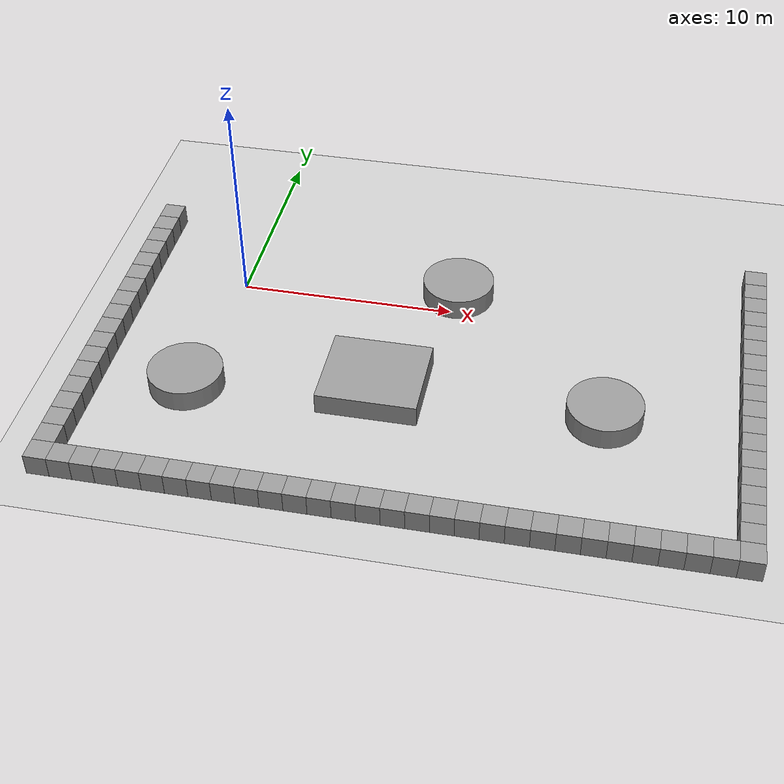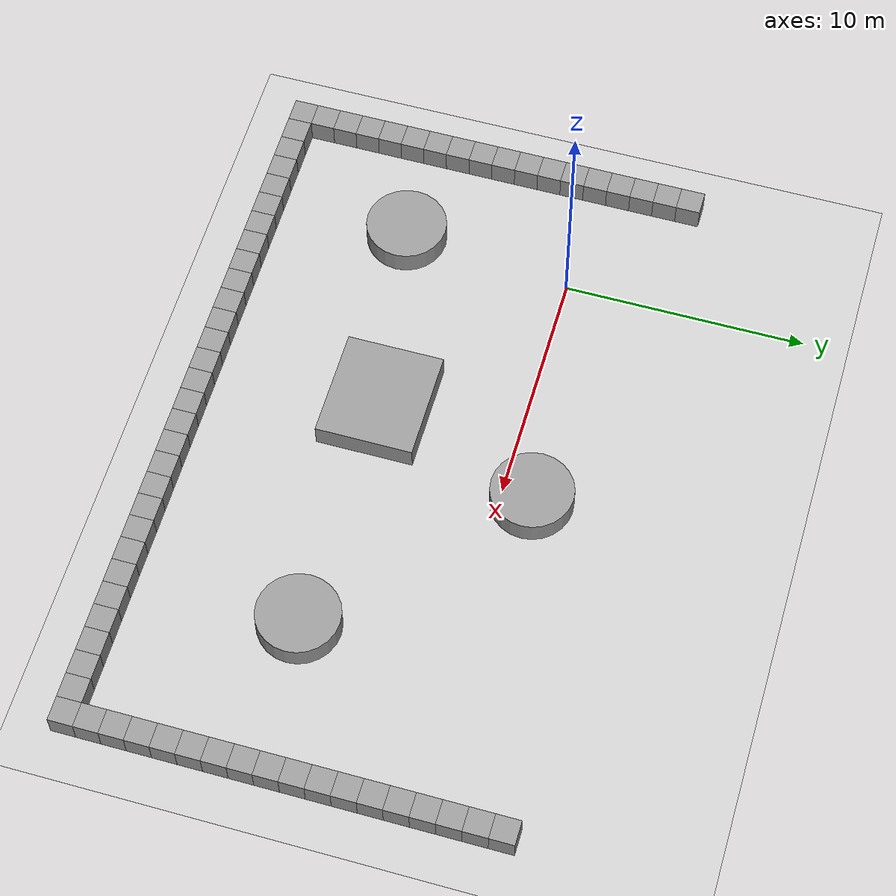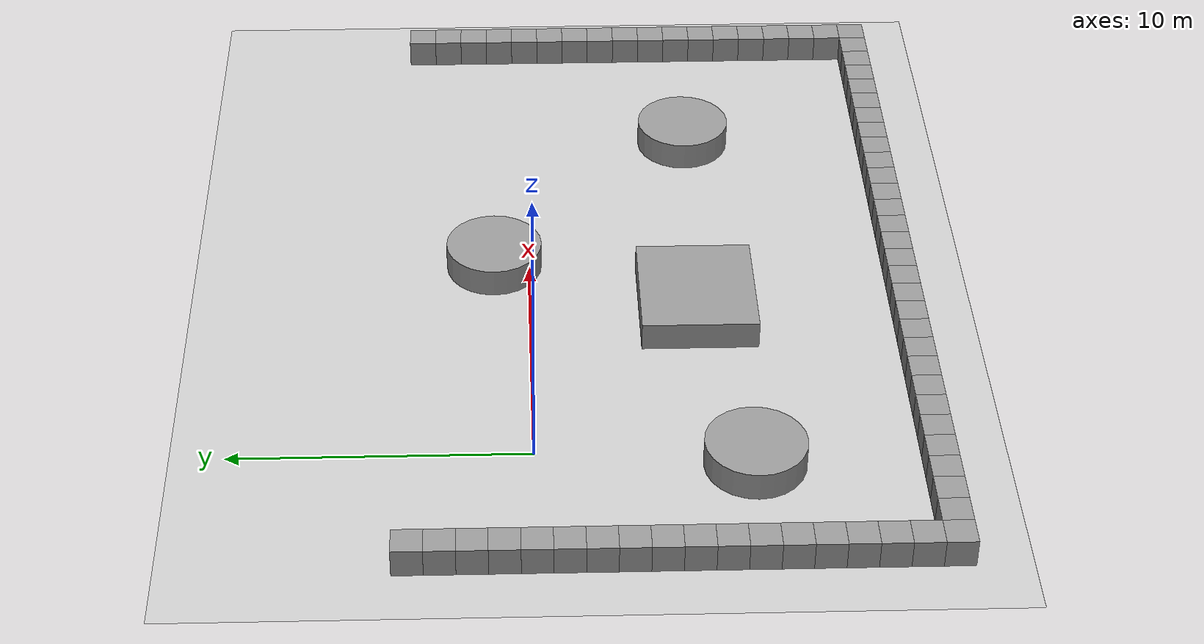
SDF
<sdf version="1.6">
 <world name="default">
  <model name="ground_plane">
   <static>1</static>
   <link name="link">
    <collision name="collision">
     <geometry><plane><normal>0 0 1</normal><size>100 100</size></plane></geometry>
     <surface><friction><ode><mu>100</mu><mu2>50</mu2></ode></friction></surface>
    </collision>
    <visual name="visual">
     <cast_shadows>0</cast_shadows>
     <geometry><plane><normal>0 0 1</normal><size>100 100</size></plane></geometry>
     <material>
      <script><uri>file://media/materials/scripts/gazebo.material</uri><name>Gazebo/Grey</name></script>
     </material>
    </visual>
    <velocity_decay><linear>0</linear><angular>0</angular></velocity_decay>
   </link>
  </model>
  <model name="unit_box_40">
   <pose>-5 4 0.5 0 0 0</pose>
   <static>1</static>
   <link name="link">
    <inertial>
     <mass>1</mass>
     <inertia><ixx>1</ixx><ixy>0</ixy><ixz>0</ixz><iyy>1</iyy><iyz>0</iyz><izz>1</izz></inertia>
    </inertial>
    <collision name="collision"><geometry><box><size>1 1 1</size></box></geometry></collision>
    <visual name="visual">
     <geometry><box><size>1 1 1</size></box></geometry>
     <material>
      <script><uri>file://media/materials/scripts/gazebo.material</uri><name>Gazebo/Grey</name></script>
     </material>
    </visual>
    <velocity_decay><linear>0</linear><angular>0</angular></velocity_decay>
   </link>
   <static>1</static>
  </model>
  <model name="unit_box_41">
   <pose>-5 3 0.5 0 0 0</pose>
   <static>1</static>
   <link name="link">
    <inertial>
     <mass>1</mass>
     <inertia><ixx>1</ixx><ixy>0</ixy><ixz>0</ixz><iyy>1</iyy><iyz>0</iyz><izz>1</izz></inertia>
    </inertial>
    <collision name="collision"><geometry><box><size>1 1 1</size></box></geometry></collision>
    <visual name="visual">
     <geometry><box><size>1 1 1</size></box></geometry>
     <material>
      <script><uri>file://media/materials/scripts/gazebo.material</uri><name>Gazebo/Grey</name></script>
     </material>
    </visual>
    <velocity_decay><linear>0</linear><angular>0</angular></velocity_decay>
   </link>
   <static>1</static>
  </model>
  <model name="unit_box_42">
   <pose>-5 2 0.5 0 0 0</pose>
   <static>1</static>
   <link name="link">
    <inertial>
     <mass>1</mass>
     <inertia><ixx>1</ixx><ixy>0</ixy><ixz>0</ixz><iyy>1</iyy><iyz>0</iyz><izz>1</izz></inertia>
    </inertial>
    <collision name="collision"><geometry><box><size>1 1 1</size></box></geometry></collision>
    <visual name="visual">
     <geometry><box><size>1 1 1</size></box></geometry>
     <material>
      <script><uri>file://media/materials/scripts/gazebo.material</uri><name>Gazebo/Grey</name></script>
     </material>
    </visual>
    <velocity_decay><linear>0</linear><angular>0</angular></velocity_decay>
   </link>
   <static>1</static>
  </model>
  <model name="unit_box_43">
   <pose>-5 1 0.5 0 0 0</pose>
   <static>1</static>
   <link name="link">
    <inertial>
     <mass>1</mass>
     <inertia><ixx>1</ixx><ixy>0</ixy><ixz>0</ixz><iyy>1</iyy><iyz>0</iyz><izz>1</izz></inertia>
    </inertial>
    <collision name="collision"><geometry><box><size>1 1 1</size></box></geometry></collision>
    <visual name="visual">
     <geometry><box><size>1 1 1</size></box></geometry>
     <material>
      <script><uri>file://media/materials/scripts/gazebo.material</uri><name>Gazebo/Grey</name></script>
     </material>
    </visual>
    <velocity_decay><linear>0</linear><angular>0</angular></velocity_decay>
   </link>
   <static>1</static>
  </model>
  <model name="unit_box_44">
   <pose>-5 0 0.5 0 0 0</pose>
   <static>1</static>
   <link name="link">
    <inertial>
     <mass>1</mass>
     <inertia><ixx>1</ixx><ixy>0</ixy><ixz>0</ixz><iyy>1</iyy><iyz>0</iyz><izz>1</izz></inertia>
    </inertial>
    <collision name="collision"><geometry><box><size>1 1 1</size></box></geometry></collision>
    <visual name="visual">
     <geometry><box><size>1 1 1</size></box></geometry>
     <material>
      <script><uri>file://media/materials/scripts/gazebo.material</uri><name>Gazebo/Grey</name></script>
     </material>
    </visual>
    <velocity_decay><linear>0</linear><angular>0</angular></velocity_decay>
   </link>
   <static>1</static>
  </model>
  <model name="unit_box_45">
   <pose>-5 -1 0.5 0 0 0</pose>
   <static>1</static>
   <link name="link">
    <inertial>
     <mass>1</mass>
     <inertia><ixx>1</ixx><ixy>0</ixy><ixz>0</ixz><iyy>1</iyy><iyz>0</iyz><izz>1</izz></inertia>
    </inertial>
    <collision name="collision"><geometry><box><size>1 1 1</size></box></geometry></collision>
    <visual name="visual">
     <geometry><box><size>1 1 1</size></box></geometry>
     <material>
      <script><uri>file://media/materials/scripts/gazebo.material</uri><name>Gazebo/Grey</name></script>
     </material>
    </visual>
    <velocity_decay><linear>0</linear><angular>0</angular></velocity_decay>
   </link>
   <static>1</static>
  </model>
  <model name="unit_box_46">
   <pose>-5 -2 0.5 0 0 0</pose>
   <static>1</static>
   <link name="link">
    <inertial>
     <mass>1</mass>
     <inertia><ixx>1</ixx><ixy>0</ixy><ixz>0</ixz><iyy>1</iyy><iyz>0</iyz><izz>1</izz></inertia>
    </inertial>
    <collision name="collision"><geometry><box><size>1 1 1</size></box></geometry></collision>
    <visual name="visual">
     <geometry><box><size>1 1 1</size></box></geometry>
     <material>
      <script><uri>file://media/materials/scripts/gazebo.material</uri><name>Gazebo/Grey</name></script>
     </material>
    </visual>
    <velocity_decay><linear>0</linear><angular>0</angular></velocity_decay>
   </link>
   <static>1</static>
  </model>
  <model name="unit_box_47">
   <pose>-5 -3 0.5 0 0 0</pose>
   <static>1</static>
   <link name="link">
    <inertial>
     <mass>1</mass>
     <inertia><ixx>1</ixx><ixy>0</ixy><ixz>0</ixz><iyy>1</iyy><iyz>0</iyz><izz>1</izz></inertia>
    </inertial>
    <collision name="collision"><geometry><box><size>1 1 1</size></box></geometry></collision>
    <visual name="visual">
     <geometry><box><size>1 1 1</size></box></geometry>
     <material>
      <script><uri>file://media/materials/scripts/gazebo.material</uri><name>Gazebo/Grey</name></script>
     </material>
    </visual>
    <velocity_decay><linear>0</linear><angular>0</angular></velocity_decay>
   </link>
   <static>1</static>
  </model>
  <model name="unit_box_182">
   <pose>24 -1 0.5 0 0 0</pose>
   <static>1</static>
   <link name="link">
    <inertial>
     <mass>1</mass>
     <inertia><ixx>1</ixx><ixy>0</ixy><ixz>0</ixz><iyy>1</iyy><iyz>0</iyz><izz>1</izz></inertia>
    </inertial>
    <collision name="collision"><geometry><box><size>1 1 1</size></box></geometry></collision>
    <visual name="visual">
     <geometry><box><size>1 1 1</size></box></geometry>
     <material>
      <script><uri>file://media/materials/scripts/gazebo.material</uri><name>Gazebo/Grey</name></script>
     </material>
    </visual>
    <velocity_decay><linear>0</linear><angular>0</angular></velocity_decay>
   </link>
   <static>1</static>
  </model>
  <model name="unit_box_195">
   <pose>24 4 0.5 0 0 0</pose>
   <static>1</static>
   <link name="link">
    <inertial>
     <mass>1</mass>
     <inertia><ixx>1</ixx><ixy>0</ixy><ixz>0</ixz><iyy>1</iyy><iyz>0</iyz><izz>1</izz></inertia>
    </inertial>
    <collision name="collision"><geometry><box><size>1 1 1</size></box></geometry></collision>
    <visual name="visual">
     <geometry><box><size>1 1 1</size></box></geometry>
     <material>
      <script><uri>file://media/materials/scripts/gazebo.material</uri><name>Gazebo/Grey</name></script>
     </material>
    </visual>
    <velocity_decay><linear>0</linear><angular>0</angular></velocity_decay>
   </link>
   <static>1</static>
  </model>
  <model name="unit_box_196">
   <pose>24 3 0.5 0 0 0</pose>
   <static>1</static>
   <link name="link">
    <inertial>
     <mass>1</mass>
     <inertia><ixx>1</ixx><ixy>0</ixy><ixz>0</ixz><iyy>1</iyy><iyz>0</iyz><izz>1</izz></inertia>
    </inertial>
    <collision name="collision"><geometry><box><size>1 1 1</size></box></geometry></collision>
    <visual name="visual">
     <geometry><box><size>1 1 1</size></box></geometry>
     <material>
      <script><uri>file://media/materials/scripts/gazebo.material</uri><name>Gazebo/Grey</name></script>
     </material>
    </visual>
    <velocity_decay><linear>0</linear><angular>0</angular></velocity_decay>
   </link>
   <static>1</static>
  </model>
  <model name="unit_box_197">
   <pose>24 2 0.5 0 0 0</pose>
   <static>1</static>
   <link name="link">
    <inertial>
     <mass>1</mass>
     <inertia><ixx>1</ixx><ixy>0</ixy><ixz>0</ixz><iyy>1</iyy><iyz>0</iyz><izz>1</izz></inertia>
    </inertial>
    <collision name="collision"><geometry><box><size>1 1 1</size></box></geometry></collision>
    <visual name="visual">
     <geometry><box><size>1 1 1</size></box></geometry>
     <material>
      <script><uri>file://media/materials/scripts/gazebo.material</uri><name>Gazebo/Grey</name></script>
     </material>
    </visual>
    <velocity_decay><linear>0</linear><angular>0</angular></velocity_decay>
   </link>
   <static>1</static>
  </model>
  <model name="unit_box_198">
   <pose>24 1 0.5 0 0 0</pose>
   <static>1</static>
   <link name="link">
    <inertial>
     <mass>1</mass>
     <inertia><ixx>1</ixx><ixy>0</ixy><ixz>0</ixz><iyy>1</iyy><iyz>0</iyz><izz>1</izz></inertia>
    </inertial>
    <collision name="collision"><geometry><box><size>1 1 1</size></box></geometry></collision>
    <visual name="visual">
     <geometry><box><size>1 1 1</size></box></geometry>
     <material>
      <script><uri>file://media/materials/scripts/gazebo.material</uri><name>Gazebo/Grey</name></script>
     </material>
    </visual>
    <velocity_decay><linear>0</linear><angular>0</angular></velocity_decay>
   </link>
   <static>1</static>
  </model>
  <model name="unit_box_199">
   <pose>24 0 0.5 0 0 0</pose>
   <static>1</static>
   <link name="link">
    <inertial>
     <mass>1</mass>
     <inertia><ixx>1</ixx><ixy>0</ixy><ixz>0</ixz><iyy>1</iyy><iyz>0</iyz><izz>1</izz></inertia>
    </inertial>
    <collision name="collision"><geometry><box><size>1 1 1</size></box></geometry></collision>
    <visual name="visual">
     <geometry><box><size>1 1 1</size></box></geometry>
     <material>
      <script><uri>file://media/materials/scripts/gazebo.material</uri><name>Gazebo/Grey</name></script>
     </material>
    </visual>
    <velocity_decay><linear>0</linear><angular>0</angular></velocity_decay>
   </link>
   <static>1</static>
  </model>
  <model name="unit_box_204">
   <pose>24 -2 0.5 0 0 0</pose>
   <static>1</static>
   <link name="link">
    <inertial>
     <mass>1</mass>
     <inertia><ixx>1</ixx><ixy>0</ixy><ixz>0</ixz><iyy>1</iyy><iyz>0</iyz><izz>1</izz></inertia>
    </inertial>
    <collision name="collision"><geometry><box><size>1 1 1</size></box></geometry></collision>
    <visual name="visual">
     <geometry><box><size>1 1 1</size></box></geometry>
     <material>
      <script><uri>file://media/materials/scripts/gazebo.material</uri><name>Gazebo/Grey</name></script>
     </material>
    </visual>
    <velocity_decay><linear>0</linear><angular>0</angular></velocity_decay>
   </link>
   <static>1</static>
  </model>
  <model name="unit_box_205">
   <pose>24 -3 0.5 0 0 0</pose>
   <static>1</static>
   <link name="link">
    <inertial>
     <mass>1</mass>
     <inertia><ixx>1</ixx><ixy>0</ixy><ixz>0</ixz><iyy>1</iyy><iyz>0</iyz><izz>1</izz></inertia>
    </inertial>
    <collision name="collision"><geometry><box><size>1 1 1</size></box></geometry></collision>
    <visual name="visual">
     <geometry><box><size>1 1 1</size></box></geometry>
     <material>
      <script><uri>file://media/materials/scripts/gazebo.material</uri><name>Gazebo/Grey</name></script>
     </material>
    </visual>
    <velocity_decay><linear>0</linear><angular>0</angular></velocity_decay>
   </link>
   <static>1</static>
  </model>
  <model name="unit_box_206">
   <pose>24 -4 0.5 0 0 0</pose>
   <static>1</static>
   <link name="link">
    <inertial>
     <mass>1</mass>
     <inertia><ixx>1</ixx><ixy>0</ixy><ixz>0</ixz><iyy>1</iyy><iyz>0</iyz><izz>1</izz></inertia>
    </inertial>
    <collision name="collision"><geometry><box><size>1 1 1</size></box></geometry></collision>
    <visual name="visual">
     <geometry><box><size>1 1 1</size></box></geometry>
     <material>
      <script><uri>file://media/materials/scripts/gazebo.material</uri><name>Gazebo/Grey</name></script>
     </material>
    </visual>
    <velocity_decay><linear>0</linear><angular>0</angular></velocity_decay>
   </link>
   <static>1</static>
  </model>
  <model name="unit_box_207">
   <pose>24 -5 0.5 0 0 0</pose>
   <static>1</static>
   <link name="link">
    <inertial>
     <mass>1</mass>
     <inertia><ixx>1</ixx><ixy>0</ixy><ixz>0</ixz><iyy>1</iyy><iyz>0</iyz><izz>1</izz></inertia>
    </inertial>
    <collision name="collision"><geometry><box><size>1 1 1</size></box></geometry></collision>
    <visual name="visual">
     <geometry><box><size>1 1 1</size></box></geometry>
     <material>
      <script><uri>file://media/materials/scripts/gazebo.material</uri><name>Gazebo/Grey</name></script>
     </material>
    </visual>
    <velocity_decay><linear>0</linear><angular>0</angular></velocity_decay>
   </link>
   <static>1</static>
  </model>
  <model name="unit_box_208">
   <pose>24 -6 0.5 0 0 0</pose>
   <static>1</static>
   <link name="link">
    <inertial>
     <mass>1</mass>
     <inertia><ixx>1</ixx><ixy>0</ixy><ixz>0</ixz><iyy>1</iyy><iyz>0</iyz><izz>1</izz></inertia>
    </inertial>
    <collision name="collision"><geometry><box><size>1 1 1</size></box></geometry></collision>
    <visual name="visual">
     <geometry><box><size>1 1 1</size></box></geometry>
     <material>
      <script><uri>file://media/materials/scripts/gazebo.material</uri><name>Gazebo/Grey</name></script>
     </material>
    </visual>
    <velocity_decay><linear>0</linear><angular>0</angular></velocity_decay>
   </link>
   <static>1</static>
  </model>
  <model name="unit_box_215">
   <pose>24 -7 0.5 0 0 0</pose>
   <static>1</static>
   <link name="link">
    <inertial>
     <mass>1</mass>
     <inertia><ixx>1</ixx><ixy>0</ixy><ixz>0</ixz><iyy>1</iyy><iyz>0</iyz><izz>1</izz></inertia>
    </inertial>
    <collision name="collision"><geometry><box><size>1 1 1</size></box></geometry></collision>
    <visual name="visual">
     <geometry><box><size>1 1 1</size></box></geometry>
     <material>
      <script><uri>file://media/materials/scripts/gazebo.material</uri><name>Gazebo/Grey</name></script>
     </material>
    </visual>
    <velocity_decay><linear>0</linear><angular>0</angular></velocity_decay>
   </link>
   <static>1</static>
  </model>
  <model name="unit_box_216">
   <pose>24 -8 0.5 0 0 0</pose>
   <static>1</static>
   <link name="link">
    <inertial>
     <mass>1</mass>
     <inertia><ixx>1</ixx><ixy>0</ixy><ixz>0</ixz><iyy>1</iyy><iyz>0</iyz><izz>1</izz></inertia>
    </inertial>
    <collision name="collision"><geometry><box><size>1 1 1</size></box></geometry></collision>
    <visual name="visual">
     <geometry><box><size>1 1 1</size></box></geometry>
     <material>
      <script><uri>file://media/materials/scripts/gazebo.material</uri><name>Gazebo/Grey</name></script>
     </material>
    </visual>
    <velocity_decay><linear>0</linear><angular>0</angular></velocity_decay>
   </link>
   <static>1</static>
  </model>
  <model name="unit_box_241">
   <pose>-5 -4 0.5 0 0 0</pose>
   <static>1</static>
   <link name="link">
    <inertial>
     <mass>1</mass>
     <inertia><ixx>1</ixx><ixy>0</ixy><ixz>0</ixz><iyy>1</iyy><iyz>0</iyz><izz>1</izz></inertia>
    </inertial>
    <collision name="collision"><geometry><box><size>1 1 1</size></box></geometry></collision>
    <visual name="visual">
     <geometry><box><size>1 1 1</size></box></geometry>
     <material>
      <script><uri>file://media/materials/scripts/gazebo.material</uri><name>Gazebo/Grey</name></script>
     </material>
    </visual>
    <velocity_decay><linear>0</linear><angular>0</angular></velocity_decay>
   </link>
   <static>1</static>
  </model>
  <model name="unit_box_251">
   <pose>-4 -13 0.5 0 0 0</pose>
   <static>1</static>
   <link name="link">
    <inertial>
     <mass>1</mass>
     <inertia><ixx>1</ixx><ixy>0</ixy><ixz>0</ixz><iyy>1</iyy><iyz>0</iyz><izz>1</izz></inertia>
    </inertial>
    <collision name="collision"><geometry><box><size>1 1 1</size></box></geometry></collision>
    <visual name="visual">
     <geometry><box><size>1 1 1</size></box></geometry>
     <material>
      <script><uri>file://media/materials/scripts/gazebo.material</uri><name>Gazebo/Grey</name></script>
     </material>
    </visual>
    <velocity_decay><linear>0</linear><angular>0</angular></velocity_decay>
   </link>
   <static>1</static>
  </model>
  <model name="unit_box_252">
   <pose>-3 -13 0.5 0 0 0</pose>
   <static>1</static>
   <link name="link">
    <inertial>
     <mass>1</mass>
     <inertia><ixx>1</ixx><ixy>0</ixy><ixz>0</ixz><iyy>1</iyy><iyz>0</iyz><izz>1</izz></inertia>
    </inertial>
    <collision name="collision"><geometry><box><size>1 1 1</size></box></geometry></collision>
    <visual name="visual">
     <geometry><box><size>1 1 1</size></box></geometry>
     <material>
      <script><uri>file://media/materials/scripts/gazebo.material</uri><name>Gazebo/Grey</name></script>
     </material>
    </visual>
    <velocity_decay><linear>0</linear><angular>0</angular></velocity_decay>
   </link>
   <static>1</static>
  </model>
  <model name="unit_box_253">
   <pose>-2 -13 0.5 0 0 0</pose>
   <static>1</static>
   <link name="link">
    <inertial>
     <mass>1</mass>
     <inertia><ixx>1</ixx><ixy>0</ixy><ixz>0</ixz><iyy>1</iyy><iyz>0</iyz><izz>1</izz></inertia>
    </inertial>
    <collision name="collision"><geometry><box><size>1 1 1</size></box></geometry></collision>
    <visual name="visual">
     <geometry><box><size>1 1 1</size></box></geometry>
     <material>
      <script><uri>file://media/materials/scripts/gazebo.material</uri><name>Gazebo/Grey</name></script>
     </material>
    </visual>
    <velocity_decay><linear>0</linear><angular>0</angular></velocity_decay>
   </link>
   <static>1</static>
  </model>
  <model name="unit_box_254">
   <pose>-1 -13 0.5 0 0 0</pose>
   <static>1</static>
   <link name="link">
    <inertial>
     <mass>1</mass>
     <inertia><ixx>1</ixx><ixy>0</ixy><ixz>0</ixz><iyy>1</iyy><iyz>0</iyz><izz>1</izz></inertia>
    </inertial>
    <collision name="collision"><geometry><box><size>1 1 1</size></box></geometry></collision>
    <visual name="visual">
     <geometry><box><size>1 1 1</size></box></geometry>
     <material>
      <script><uri>file://media/materials/scripts/gazebo.material</uri><name>Gazebo/Grey</name></script>
     </material>
    </visual>
    <velocity_decay><linear>0</linear><angular>0</angular></velocity_decay>
   </link>
   <static>1</static>
  </model>
  <model name="unit_box_255">
   <pose>0 -13 0.5 0 0 0</pose>
   <static>1</static>
   <link name="link">
    <inertial>
     <mass>1</mass>
     <inertia><ixx>1</ixx><ixy>0</ixy><ixz>0</ixz><iyy>1</iyy><iyz>0</iyz><izz>1</izz></inertia>
    </inertial>
    <collision name="collision"><geometry><box><size>1 1 1</size></box></geometry></collision>
    <visual name="visual">
     <geometry><box><size>1 1 1</size></box></geometry>
     <material>
      <script><uri>file://media/materials/scripts/gazebo.material</uri><name>Gazebo/Grey</name></script>
     </material>
    </visual>
    <velocity_decay><linear>0</linear><angular>0</angular></velocity_decay>
   </link>
   <static>1</static>
  </model>
  <model name="unit_box_256">
   <pose>1 -13 0.5 0 0 0</pose>
   <static>1</static>
   <link name="link">
    <inertial>
     <mass>1</mass>
     <inertia><ixx>1</ixx><ixy>0</ixy><ixz>0</ixz><iyy>1</iyy><iyz>0</iyz><izz>1</izz></inertia>
    </inertial>
    <collision name="collision"><geometry><box><size>1 1 1</size></box></geometry></collision>
    <visual name="visual">
     <geometry><box><size>1 1 1</size></box></geometry>
     <material>
      <script><uri>file://media/materials/scripts/gazebo.material</uri><name>Gazebo/Grey</name></script>
     </material>
    </visual>
    <velocity_decay><linear>0</linear><angular>0</angular></velocity_decay>
   </link>
   <static>1</static>
  </model>
  <model name="unit_box_257">
   <pose>2 -13 0.5 0 0 0</pose>
   <static>1</static>
   <link name="link">
    <inertial>
     <mass>1</mass>
     <inertia><ixx>1</ixx><ixy>0</ixy><ixz>0</ixz><iyy>1</iyy><iyz>0</iyz><izz>1</izz></inertia>
    </inertial>
    <collision name="collision"><geometry><box><size>1 1 1</size></box></geometry></collision>
    <visual name="visual">
     <geometry><box><size>1 1 1</size></box></geometry>
     <material>
      <script><uri>file://media/materials/scripts/gazebo.material</uri><name>Gazebo/Grey</name></script>
     </material>
    </visual>
    <velocity_decay><linear>0</linear><angular>0</angular></velocity_decay>
   </link>
   <static>1</static>
  </model>
  <model name="unit_box_258">
   <pose>3 -13 0.5 0 0 0</pose>
   <static>1</static>
   <link name="link">
    <inertial>
     <mass>1</mass>
     <inertia><ixx>1</ixx><ixy>0</ixy><ixz>0</ixz><iyy>1</iyy><iyz>0</iyz><izz>1</izz></inertia>
    </inertial>
    <collision name="collision"><geometry><box><size>1 1 1</size></box></geometry></collision>
    <visual name="visual">
     <geometry><box><size>1 1 1</size></box></geometry>
     <material>
      <script><uri>file://media/materials/scripts/gazebo.material</uri><name>Gazebo/Grey</name></script>
     </material>
    </visual>
    <velocity_decay><linear>0</linear><angular>0</angular></velocity_decay>
   </link>
   <static>1</static>
  </model>
  <model name="unit_box_259">
   <pose>4 -13 0.5 0 0 0</pose>
   <static>1</static>
   <link name="link">
    <inertial>
     <mass>1</mass>
     <inertia><ixx>1</ixx><ixy>0</ixy><ixz>0</ixz><iyy>1</iyy><iyz>0</iyz><izz>1</izz></inertia>
    </inertial>
    <collision name="collision"><geometry><box><size>1 1 1</size></box></geometry></collision>
    <visual name="visual">
     <geometry><box><size>1 1 1</size></box></geometry>
     <material>
      <script><uri>file://media/materials/scripts/gazebo.material</uri><name>Gazebo/Grey</name></script>
     </material>
    </visual>
    <velocity_decay><linear>0</linear><angular>0</angular></velocity_decay>
   </link>
   <static>1</static>
  </model>
  <model name="unit_box_260">
   <pose>5 -13 0.5 0 0 0</pose>
   <static>1</static>
   <link name="link">
    <inertial>
     <mass>1</mass>
     <inertia><ixx>1</ixx><ixy>0</ixy><ixz>0</ixz><iyy>1</iyy><iyz>0</iyz><izz>1</izz></inertia>
    </inertial>
    <collision name="collision"><geometry><box><size>1 1 1</size></box></geometry></collision>
    <visual name="visual">
     <geometry><box><size>1 1 1</size></box></geometry>
     <material>
      <script><uri>file://media/materials/scripts/gazebo.material</uri><name>Gazebo/Grey</name></script>
     </material>
    </visual>
    <velocity_decay><linear>0</linear><angular>0</angular></velocity_decay>
   </link>
   <static>1</static>
  </model>
  <model name="unit_box_261">
   <pose>6 -13 0.5 0 0 0</pose>
   <static>1</static>
   <link name="link">
    <inertial>
     <mass>1</mass>
     <inertia><ixx>1</ixx><ixy>0</ixy><ixz>0</ixz><iyy>1</iyy><iyz>0</iyz><izz>1</izz></inertia>
    </inertial>
    <collision name="collision"><geometry><box><size>1 1 1</size></box></geometry></collision>
    <visual name="visual">
     <geometry><box><size>1 1 1</size></box></geometry>
     <material>
      <script><uri>file://media/materials/scripts/gazebo.material</uri><name>Gazebo/Grey</name></script>
     </material>
    </visual>
    <velocity_decay><linear>0</linear><angular>0</angular></velocity_decay>
   </link>
   <static>1</static>
  </model>
  <model name="unit_box_262">
   <pose>7 -13 0.5 0 0 0</pose>
   <static>1</static>
   <link name="link">
    <inertial>
     <mass>1</mass>
     <inertia><ixx>1</ixx><ixy>0</ixy><ixz>0</ixz><iyy>1</iyy><iyz>0</iyz><izz>1</izz></inertia>
    </inertial>
    <collision name="collision"><geometry><box><size>1 1 1</size></box></geometry></collision>
    <visual name="visual">
     <geometry><box><size>1 1 1</size></box></geometry>
     <material>
      <script><uri>file://media/materials/scripts/gazebo.material</uri><name>Gazebo/Grey</name></script>
     </material>
    </visual>
    <velocity_decay><linear>0</linear><angular>0</angular></velocity_decay>
   </link>
   <static>1</static>
  </model>
  <model name="unit_box_263">
   <pose>8 -13 0.5 0 0 0</pose>
   <static>1</static>
   <link name="link">
    <inertial>
     <mass>1</mass>
     <inertia><ixx>1</ixx><ixy>0</ixy><ixz>0</ixz><iyy>1</iyy><iyz>0</iyz><izz>1</izz></inertia>
    </inertial>
    <collision name="collision"><geometry><box><size>1 1 1</size></box></geometry></collision>
    <visual name="visual">
     <geometry><box><size>1 1 1</size></box></geometry>
     <material>
      <script><uri>file://media/materials/scripts/gazebo.material</uri><name>Gazebo/Grey</name></script>
     </material>
    </visual>
    <velocity_decay><linear>0</linear><angular>0</angular></velocity_decay>
   </link>
   <static>1</static>
  </model>
  <model name="unit_box_264">
   <pose>9 -13 0.5 0 0 0</pose>
   <static>1</static>
   <link name="link">
    <inertial>
     <mass>1</mass>
     <inertia><ixx>1</ixx><ixy>0</ixy><ixz>0</ixz><iyy>1</iyy><iyz>0</iyz><izz>1</izz></inertia>
    </inertial>
    <collision name="collision"><geometry><box><size>1 1 1</size></box></geometry></collision>
    <visual name="visual">
     <geometry><box><size>1 1 1</size></box></geometry>
     <material>
      <script><uri>file://media/materials/scripts/gazebo.material</uri><name>Gazebo/Grey</name></script>
     </material>
    </visual>
    <velocity_decay><linear>0</linear><angular>0</angular></velocity_decay>
   </link>
   <static>1</static>
  </model>
  <model name="unit_box_265">
   <pose>10 -13 0.5 0 0 0</pose>
   <static>1</static>
   <link name="link">
    <inertial>
     <mass>1</mass>
     <inertia><ixx>1</ixx><ixy>0</ixy><ixz>0</ixz><iyy>1</iyy><iyz>0</iyz><izz>1</izz></inertia>
    </inertial>
    <collision name="collision"><geometry><box><size>1 1 1</size></box></geometry></collision>
    <visual name="visual">
     <geometry><box><size>1 1 1</size></box></geometry>
     <material>
      <script><uri>file://media/materials/scripts/gazebo.material</uri><name>Gazebo/Grey</name></script>
     </material>
    </visual>
    <velocity_decay><linear>0</linear><angular>0</angular></velocity_decay>
   </link>
   <static>1</static>
  </model>
  <model name="unit_box_266">
   <pose>11 -13 0.5 0 0 0</pose>
   <static>1</static>
   <link name="link">
    <inertial>
     <mass>1</mass>
     <inertia><ixx>1</ixx><ixy>0</ixy><ixz>0</ixz><iyy>1</iyy><iyz>0</iyz><izz>1</izz></inertia>
    </inertial>
    <collision name="collision"><geometry><box><size>1 1 1</size></box></geometry></collision>
    <visual name="visual">
     <geometry><box><size>1 1 1</size></box></geometry>
     <material>
      <script><uri>file://media/materials/scripts/gazebo.material</uri><name>Gazebo/Grey</name></script>
     </material>
    </visual>
    <velocity_decay><linear>0</linear><angular>0</angular></velocity_decay>
   </link>
   <static>1</static>
  </model>
  <model name="unit_box_267">
   <pose>12 -13 0.5 0 0 0</pose>
   <static>1</static>
   <link name="link">
    <inertial>
     <mass>1</mass>
     <inertia><ixx>1</ixx><ixy>0</ixy><ixz>0</ixz><iyy>1</iyy><iyz>0</iyz><izz>1</izz></inertia>
    </inertial>
    <collision name="collision"><geometry><box><size>1 1 1</size></box></geometry></collision>
    <visual name="visual">
     <geometry><box><size>1 1 1</size></box></geometry>
     <material>
      <script><uri>file://media/materials/scripts/gazebo.material</uri><name>Gazebo/Grey</name></script>
     </material>
    </visual>
    <velocity_decay><linear>0</linear><angular>0</angular></velocity_decay>
   </link>
   <static>1</static>
  </model>
  <model name="unit_box_268">
   <pose>13 -13 0.5 0 0 0</pose>
   <static>1</static>
   <link name="link">
    <inertial>
     <mass>1</mass>
     <inertia><ixx>1</ixx><ixy>0</ixy><ixz>0</ixz><iyy>1</iyy><iyz>0</iyz><izz>1</izz></inertia>
    </inertial>
    <collision name="collision"><geometry><box><size>1 1 1</size></box></geometry></collision>
    <visual name="visual">
     <geometry><box><size>1 1 1</size></box></geometry>
     <material>
      <script><uri>file://media/materials/scripts/gazebo.material</uri><name>Gazebo/Grey</name></script>
     </material>
    </visual>
    <velocity_decay><linear>0</linear><angular>0</angular></velocity_decay>
   </link>
   <static>1</static>
  </model>
  <model name="unit_box_269">
   <pose>14 -13 0.5 0 0 0</pose>
   <static>1</static>
   <link name="link">
    <inertial>
     <mass>1</mass>
     <inertia><ixx>1</ixx><ixy>0</ixy><ixz>0</ixz><iyy>1</iyy><iyz>0</iyz><izz>1</izz></inertia>
    </inertial>
    <collision name="collision"><geometry><box><size>1 1 1</size></box></geometry></collision>
    <visual name="visual">
     <geometry><box><size>1 1 1</size></box></geometry>
     <material>
      <script><uri>file://media/materials/scripts/gazebo.material</uri><name>Gazebo/Grey</name></script>
     </material>
    </visual>
    <velocity_decay><linear>0</linear><angular>0</angular></velocity_decay>
   </link>
   <static>1</static>
  </model>
  <model name="unit_box_274">
   <pose>24 -9 0.5 0 0 0</pose>
   <static>1</static>
   <link name="link">
    <inertial>
     <mass>1</mass>
     <inertia><ixx>1</ixx><ixy>0</ixy><ixz>0</ixz><iyy>1</iyy><iyz>0</iyz><izz>1</izz></inertia>
    </inertial>
    <collision name="collision"><geometry><box><size>1 1 1</size></box></geometry></collision>
    <visual name="visual">
     <geometry><box><size>1 1 1</size></box></geometry>
     <material>
      <script><uri>file://media/materials/scripts/gazebo.material</uri><name>Gazebo/Grey</name></script>
     </material>
    </visual>
    <velocity_decay><linear>0</linear><angular>0</angular></velocity_decay>
   </link>
   <static>1</static>
  </model>
  <model name="unit_box_275">
   <pose>24 -10 0.5 0 0 0</pose>
   <static>1</static>
   <link name="link">
    <inertial>
     <mass>1</mass>
     <inertia><ixx>1</ixx><ixy>0</ixy><ixz>0</ixz><iyy>1</iyy><iyz>0</iyz><izz>1</izz></inertia>
    </inertial>
    <collision name="collision"><geometry><box><size>1 1 1</size></box></geometry></collision>
    <visual name="visual">
     <geometry><box><size>1 1 1</size></box></geometry>
     <material>
      <script><uri>file://media/materials/scripts/gazebo.material</uri><name>Gazebo/Grey</name></script>
     </material>
    </visual>
    <velocity_decay><linear>0</linear><angular>0</angular></velocity_decay>
   </link>
   <static>1</static>
  </model>
  <model name="unit_box_276">
   <pose>24 -11 0.5 0 0 0</pose>
   <static>1</static>
   <link name="link">
    <inertial>
     <mass>1</mass>
     <inertia><ixx>1</ixx><ixy>0</ixy><ixz>0</ixz><iyy>1</iyy><iyz>0</iyz><izz>1</izz></inertia>
    </inertial>
    <collision name="collision"><geometry><box><size>1 1 1</size></box></geometry></collision>
    <visual name="visual">
     <geometry><box><size>1 1 1</size></box></geometry>
     <material>
      <script><uri>file://media/materials/scripts/gazebo.material</uri><name>Gazebo/Grey</name></script>
     </material>
    </visual>
    <velocity_decay><linear>0</linear><angular>0</angular></velocity_decay>
   </link>
   <static>1</static>
  </model>
  <model name="unit_box_277">
   <pose>24 -12 0.5 0 0 0</pose>
   <static>1</static>
   <link name="link">
    <inertial>
     <mass>1</mass>
     <inertia><ixx>1</ixx><ixy>0</ixy><ixz>0</ixz><iyy>1</iyy><iyz>0</iyz><izz>1</izz></inertia>
    </inertial>
    <collision name="collision"><geometry><box><size>1 1 1</size></box></geometry></collision>
    <visual name="visual">
     <geometry><box><size>1 1 1</size></box></geometry>
     <material>
      <script><uri>file://media/materials/scripts/gazebo.material</uri><name>Gazebo/Grey</name></script>
     </material>
    </visual>
    <velocity_decay><linear>0</linear><angular>0</angular></velocity_decay>
   </link>
   <static>1</static>
  </model>
  <model name="unit_box_278">
   <pose>15 -13 0.5 0 0 0</pose>
   <static>1</static>
   <link name="link">
    <inertial>
     <mass>1</mass>
     <inertia><ixx>1</ixx><ixy>0</ixy><ixz>0</ixz><iyy>1</iyy><iyz>0</iyz><izz>1</izz></inertia>
    </inertial>
    <collision name="collision"><geometry><box><size>1 1 1</size></box></geometry></collision>
    <visual name="visual">
     <geometry><box><size>1 1 1</size></box></geometry>
     <material>
      <script><uri>file://media/materials/scripts/gazebo.material</uri><name>Gazebo/Grey</name></script>
     </material>
    </visual>
    <velocity_decay><linear>0</linear><angular>0</angular></velocity_decay>
   </link>
   <static>1</static>
  </model>
  <model name="unit_box_279">
   <pose>16 -13 0.5 0 0 0</pose>
   <static>1</static>
   <link name="link">
    <inertial>
     <mass>1</mass>
     <inertia><ixx>1</ixx><ixy>0</ixy><ixz>0</ixz><iyy>1</iyy><iyz>0</iyz><izz>1</izz></inertia>
    </inertial>
    <collision name="collision"><geometry><box><size>1 1 1</size></box></geometry></collision>
    <visual name="visual">
     <geometry><box><size>1 1 1</size></box></geometry>
     <material>
      <script><uri>file://media/materials/scripts/gazebo.material</uri><name>Gazebo/Grey</name></script>
     </material>
    </visual>
    <velocity_decay><linear>0</linear><angular>0</angular></velocity_decay>
   </link>
   <static>1</static>
  </model>
  <model name="unit_box_280">
   <pose>17 -13 0.5 0 0 0</pose>
   <static>1</static>
   <link name="link">
    <inertial>
     <mass>1</mass>
     <inertia><ixx>1</ixx><ixy>0</ixy><ixz>0</ixz><iyy>1</iyy><iyz>0</iyz><izz>1</izz></inertia>
    </inertial>
    <collision name="collision"><geometry><box><size>1 1 1</size></box></geometry></collision>
    <visual name="visual">
     <geometry><box><size>1 1 1</size></box></geometry>
     <material>
      <script><uri>file://media/materials/scripts/gazebo.material</uri><name>Gazebo/Grey</name></script>
     </material>
    </visual>
    <velocity_decay><linear>0</linear><angular>0</angular></velocity_decay>
   </link>
   <static>1</static>
  </model>
  <model name="unit_box_281">
   <pose>18 -13 0.5 0 0 0</pose>
   <static>1</static>
   <link name="link">
    <inertial>
     <mass>1</mass>
     <inertia><ixx>1</ixx><ixy>0</ixy><ixz>0</ixz><iyy>1</iyy><iyz>0</iyz><izz>1</izz></inertia>
    </inertial>
    <collision name="collision"><geometry><box><size>1 1 1</size></box></geometry></collision>
    <visual name="visual">
     <geometry><box><size>1 1 1</size></box></geometry>
     <material>
      <script><uri>file://media/materials/scripts/gazebo.material</uri><name>Gazebo/Grey</name></script>
     </material>
    </visual>
    <velocity_decay><linear>0</linear><angular>0</angular></velocity_decay>
   </link>
   <static>1</static>
  </model>
  <model name="unit_box_282">
   <pose>19 -13 0.5 0 0 0</pose>
   <static>1</static>
   <link name="link">
    <inertial>
     <mass>1</mass>
     <inertia><ixx>1</ixx><ixy>0</ixy><ixz>0</ixz><iyy>1</iyy><iyz>0</iyz><izz>1</izz></inertia>
    </inertial>
    <collision name="collision"><geometry><box><size>1 1 1</size></box></geometry></collision>
    <visual name="visual">
     <geometry><box><size>1 1 1</size></box></geometry>
     <material>
      <script><uri>file://media/materials/scripts/gazebo.material</uri><name>Gazebo/Grey</name></script>
     </material>
    </visual>
    <velocity_decay><linear>0</linear><angular>0</angular></velocity_decay>
   </link>
   <static>1</static>
  </model>
  <model name="unit_box_283">
   <pose>20 -13 0.5 0 0 0</pose>
   <static>1</static>
   <link name="link">
    <inertial>
     <mass>1</mass>
     <inertia><ixx>1</ixx><ixy>0</ixy><ixz>0</ixz><iyy>1</iyy><iyz>0</iyz><izz>1</izz></inertia>
    </inertial>
    <collision name="collision"><geometry><box><size>1 1 1</size></box></geometry></collision>
    <visual name="visual">
     <geometry><box><size>1 1 1</size></box></geometry>
     <material>
      <script><uri>file://media/materials/scripts/gazebo.material</uri><name>Gazebo/Grey</name></script>
     </material>
    </visual>
    <velocity_decay><linear>0</linear><angular>0</angular></velocity_decay>
   </link>
   <static>1</static>
  </model>
  <model name="unit_box_284">
   <pose>21 -13 0.5 0 0 0</pose>
   <static>1</static>
   <link name="link">
    <inertial>
     <mass>1</mass>
     <inertia><ixx>1</ixx><ixy>0</ixy><ixz>0</ixz><iyy>1</iyy><iyz>0</iyz><izz>1</izz></inertia>
    </inertial>
    <collision name="collision"><geometry><box><size>1 1 1</size></box></geometry></collision>
    <visual name="visual">
     <geometry><box><size>1 1 1</size></box></geometry>
     <material>
      <script><uri>file://media/materials/scripts/gazebo.material</uri><name>Gazebo/Grey</name></script>
     </material>
    </visual>
    <velocity_decay><linear>0</linear><angular>0</angular></velocity_decay>
   </link>
   <static>1</static>
  </model>
  <model name="unit_box_285">
   <pose>22 -13 0.5 0 0 0</pose>
   <static>1</static>
   <link name="link">
    <inertial>
     <mass>1</mass>
     <inertia><ixx>1</ixx><ixy>0</ixy><ixz>0</ixz><iyy>1</iyy><iyz>0</iyz><izz>1</izz></inertia>
    </inertial>
    <collision name="collision"><geometry><box><size>1 1 1</size></box></geometry></collision>
    <visual name="visual">
     <geometry><box><size>1 1 1</size></box></geometry>
     <material>
      <script><uri>file://media/materials/scripts/gazebo.material</uri><name>Gazebo/Grey</name></script>
     </material>
    </visual>
    <velocity_decay><linear>0</linear><angular>0</angular></velocity_decay>
   </link>
   <static>1</static>
  </model>
  <model name="unit_box_286">
   <pose>23 -13 0.5 0 0 0</pose>
   <static>1</static>
   <link name="link">
    <inertial>
     <mass>1</mass>
     <inertia><ixx>1</ixx><ixy>0</ixy><ixz>0</ixz><iyy>1</iyy><iyz>0</iyz><izz>1</izz></inertia>
    </inertial>
    <collision name="collision"><geometry><box><size>1 1 1</size></box></geometry></collision>
    <visual name="visual">
     <geometry><box><size>1 1 1</size></box></geometry>
     <material>
      <script><uri>file://media/materials/scripts/gazebo.material</uri><name>Gazebo/Grey</name></script>
     </material>
    </visual>
    <velocity_decay><linear>0</linear><angular>0</angular></velocity_decay>
   </link>
   <static>1</static>
  </model>
  <model name="unit_box_287">
   <pose>24 -13 0.5 0 0 0</pose>
   <static>1</static>
   <link name="link">
    <inertial>
     <mass>1</mass>
     <inertia><ixx>1</ixx><ixy>0</ixy><ixz>0</ixz><iyy>1</iyy><iyz>0</iyz><izz>1</izz></inertia>
    </inertial>
    <collision name="collision"><geometry><box><size>1 1 1</size></box></geometry></collision>
    <visual name="visual">
     <geometry><box><size>1 1 1</size></box></geometry>
     <material>
      <script><uri>file://media/materials/scripts/gazebo.material</uri><name>Gazebo/Grey</name></script>
     </material>
    </visual>
    <velocity_decay><linear>0</linear><angular>0</angular></velocity_decay>
   </link>
   <static>1</static>
  </model>
  <model name="unit_box_1_0">
   <pose>-5 -5 0.5 0 0 0</pose>
   <link name="link">
    <inertial>
     <mass>1</mass>
     <inertia><ixx>1</ixx><ixy>0</ixy><ixz>0</ixz><iyy>1</iyy><iyz>0</iyz><izz>1</izz></inertia>
    </inertial>
    <collision name="collision"><geometry><box><size>1 1 1</size></box></geometry></collision>
    <visual name="visual">
     <geometry><box><size>1 1 1</size></box></geometry>
     <material>
      <script><uri>file://media/materials/scripts/gazebo.material</uri><name>Gazebo/Grey</name></script>
     </material>
    </visual>
    <velocity_decay><linear>0</linear><angular>0</angular></velocity_decay>
   </link>
   <static>1</static>
  </model>
  <model name="unit_box_2_0">
   <pose>-5 -6 0.5 0 0 0</pose>
   <link name="link">
    <inertial>
     <mass>1</mass>
     <inertia><ixx>1</ixx><ixy>0</ixy><ixz>0</ixz><iyy>1</iyy><iyz>0</iyz><izz>1</izz></inertia>
    </inertial>
    <collision name="collision"><geometry><box><size>1 1 1</size></box></geometry></collision>
    <visual name="visual">
     <geometry><box><size>1 1 1</size></box></geometry>
     <material>
      <script><uri>file://media/materials/scripts/gazebo.material</uri><name>Gazebo/Grey</name></script>
     </material>
    </visual>
    <velocity_decay><linear>0</linear><angular>0</angular></velocity_decay>
   </link>
   <static>1</static>
  </model>
  <model name="unit_box_3_0">
   <pose>-5 -7 0.5 0 0 0</pose>
   <link name="link">
    <inertial>
     <mass>1</mass>
     <inertia><ixx>1</ixx><ixy>0</ixy><ixz>0</ixz><iyy>1</iyy><iyz>0</iyz><izz>1</izz></inertia>
    </inertial>
    <collision name="collision"><geometry><box><size>1 1 1</size></box></geometry></collision>
    <visual name="visual">
     <geometry><box><size>1 1 1</size></box></geometry>
     <material>
      <script><uri>file://media/materials/scripts/gazebo.material</uri><name>Gazebo/Grey</name></script>
     </material>
    </visual>
    <velocity_decay><linear>0</linear><angular>0</angular></velocity_decay>
   </link>
   <static>1</static>
  </model>
  <model name="unit_box_4_0">
   <pose>-5 -8 0.5 0 0 0</pose>
   <link name="link">
    <inertial>
     <mass>1</mass>
     <inertia><ixx>1</ixx><ixy>0</ixy><ixz>0</ixz><iyy>1</iyy><iyz>0</iyz><izz>1</izz></inertia>
    </inertial>
    <collision name="collision"><geometry><box><size>1 1 1</size></box></geometry></collision>
    <visual name="visual">
     <geometry><box><size>1 1 1</size></box></geometry>
     <material>
      <script><uri>file://media/materials/scripts/gazebo.material</uri><name>Gazebo/Grey</name></script>
     </material>
    </visual>
    <velocity_decay><linear>0</linear><angular>0</angular></velocity_decay>
   </link>
   <static>1</static>
  </model>
  <model name="unit_box_5_0">
   <pose>-5 -9 0.5 0 0 0</pose>
   <link name="link">
    <inertial>
     <mass>1</mass>
     <inertia><ixx>1</ixx><ixy>0</ixy><ixz>0</ixz><iyy>1</iyy><iyz>0</iyz><izz>1</izz></inertia>
    </inertial>
    <collision name="collision"><geometry><box><size>1 1 1</size></box></geometry></collision>
    <visual name="visual">
     <geometry><box><size>1 1 1</size></box></geometry>
     <material>
      <script><uri>file://media/materials/scripts/gazebo.material</uri><name>Gazebo/Grey</name></script>
     </material>
    </visual>
    <velocity_decay><linear>0</linear><angular>0</angular></velocity_decay>
   </link>
   <static>1</static>
  </model>
  <model name="unit_box_6_0">
   <pose>-5 -10 0.5 0 0 0</pose>
   <link name="link">
    <inertial>
     <mass>1</mass>
     <inertia><ixx>1</ixx><ixy>0</ixy><ixz>0</ixz><iyy>1</iyy><iyz>0</iyz><izz>1</izz></inertia>
    </inertial>
    <collision name="collision"><geometry><box><size>1 1 1</size></box></geometry></collision>
    <visual name="visual">
     <geometry><box><size>1 1 1</size></box></geometry>
     <material>
      <script><uri>file://media/materials/scripts/gazebo.material</uri><name>Gazebo/Grey</name></script>
     </material>
    </visual>
    <velocity_decay><linear>0</linear><angular>0</angular></velocity_decay>
   </link>
   <static>1</static>
  </model>
  <model name="unit_box_7_0">
   <pose>-5 -11 0.5 0 0 0</pose>
   <link name="link">
    <inertial>
     <mass>1</mass>
     <inertia><ixx>1</ixx><ixy>0</ixy><ixz>0</ixz><iyy>1</iyy><iyz>0</iyz><izz>1</izz></inertia>
    </inertial>
    <collision name="collision"><geometry><box><size>1 1 1</size></box></geometry></collision>
    <visual name="visual">
     <geometry><box><size>1 1 1</size></box></geometry>
     <material>
      <script><uri>file://media/materials/scripts/gazebo.material</uri><name>Gazebo/Grey</name></script>
     </material>
    </visual>
    <velocity_decay><linear>0</linear><angular>0</angular></velocity_decay>
   </link>
   <static>1</static>
  </model>
  <model name="unit_box_8_0">
   <pose>-5 -12 0.5 0 0 0</pose>
   <link name="link">
    <inertial>
     <mass>1</mass>
     <inertia><ixx>1</ixx><ixy>0</ixy><ixz>0</ixz><iyy>1</iyy><iyz>0</iyz><izz>1</izz></inertia>
    </inertial>
    <collision name="collision"><geometry><box><size>1 1 1</size></box></geometry></collision>
    <visual name="visual">
     <geometry><box><size>1 1 1</size></box></geometry>
     <material>
      <script><uri>file://media/materials/scripts/gazebo.material</uri><name>Gazebo/Grey</name></script>
     </material>
    </visual>
    <velocity_decay><linear>0</linear><angular>0</angular></velocity_decay>
   </link>
   <static>1</static>
  </model>
  <model name="unit_box_9_0">
   <pose>-5 -13 0.5 0 0 0</pose>
   <link name="link">
    <inertial>
     <mass>1</mass>
     <inertia><ixx>1</ixx><ixy>0</ixy><ixz>0</ixz><iyy>1</iyy><iyz>0</iyz><izz>1</izz></inertia>
    </inertial>
    <collision name="collision"><geometry><box><size>1 1 1</size></box></geometry></collision>
    <visual name="visual">
     <geometry><box><size>1 1 1</size></box></geometry>
     <material>
      <script><uri>file://media/materials/scripts/gazebo.material</uri><name>Gazebo/Grey</name></script>
     </material>
    </visual>
    <velocity_decay><linear>0</linear><angular>0</angular></velocity_decay>
   </link>
   <static>1</static>
  </model>
  <model name="unit_box_0">
   <pose>7.6 -5.75 0.5 0 0 0</pose>
   <link name="link">
    <inertial>
     <mass>1</mass>
     <inertia>
      <ixx>0.166667</ixx>
      <ixy>0</ixy>
      <ixz>0</ixz>
      <iyy>0.166667</iyy>
      <iyz>0</iyz>
      <izz>0.166667</izz>
     </inertia>
    </inertial>
    <collision name="collision"><geometry><box><size>4.5 4 1</size></box></geometry></collision>
    <visual name="visual">
     <geometry><box><size>4.5 4 1</size></box></geometry>
     <material>
      <script><name>Gazebo/Grey</name><uri>file://media/materials/scripts/gazebo.material</uri></script>
     </material>
    </visual>
   </link>
  </model>
  <model name="unit_cylinder_0">
   <pose>17.75 -5.9 0.5 0 0 0</pose>
   <link name="link">
    <inertial>
     <mass>1</mass>
     <inertia><ixx>0.145833</ixx><ixy>0</ixy><ixz>0</ixz><iyy>0.145833</iyy><iyz>0</iyz><izz>0.125</izz></inertia>
    </inertial>
    <collision name="collision">
     <geometry><cylinder><radius>1.675</radius><length>1</length></cylinder></geometry>
    </collision>
    <visual name="visual">
     <geometry><cylinder><radius>1.675</radius><length>1</length></cylinder></geometry>
     <material>
      <script><name>Gazebo/Grey</name><uri>file://media/materials/scripts/gazebo.material</uri></script>
     </material>
    </visual>
   </link>
  </model>
  <model name="unit_cylinder_0_clone">
   <pose>10.15 1.25 0.5 0 0 0</pose>
   <link name="link">
    <inertial>
     <mass>1</mass>
     <inertia><ixx>0.145833</ixx><ixy>0</ixy><ixz>0</ixz><iyy>0.145833</iyy><iyz>0</iyz><izz>0.125</izz></inertia>
    </inertial>
    <collision name="collision">
     <geometry><cylinder><radius>1.67556</radius><length>1</length></cylinder></geometry>
    </collision>
    <visual name="visual">
     <geometry><cylinder><radius>1.67556</radius><length>1</length></cylinder></geometry>
     <material>
      <script><name>Gazebo/Grey</name><uri>file://media/materials/scripts/gazebo.material</uri></script>
     </material>
    </visual>
   </link>
  </model>
  <model name="unit_cylinder_0_clone_1">
   <pose>-0.65 -7.1 0.5 0 0 0</pose>
   <link name="link">
    <inertial>
     <mass>1</mass>
     <inertia><ixx>0.145833</ixx><ixy>0</ixy><ixz>0</ixz><iyy>0.145833</iyy><iyz>0</iyz><izz>0.125</izz></inertia>
    </inertial>
    <collision name="collision">
     <geometry><cylinder><radius>1.67556</radius><length>1</length></cylinder></geometry>
    </collision>
    <visual name="visual">
     <geometry><cylinder><radius>1.67556</radius><length>1</length></cylinder></geometry>
     <material>
      <script><name>Gazebo/Grey</name><uri>file://media/materials/scripts/gazebo.material</uri></script>
     </material>
    </visual>
   </link>
  </model>
 </world>
</sdf>
